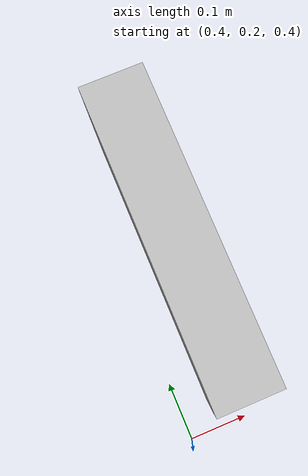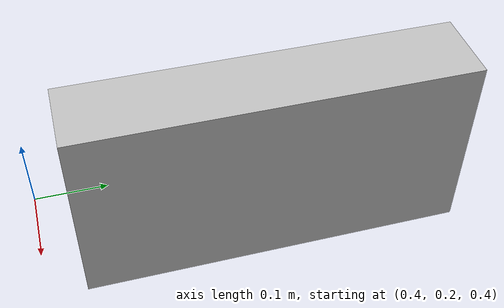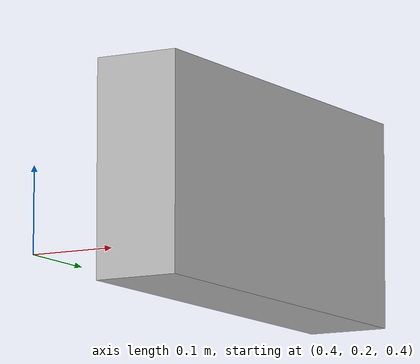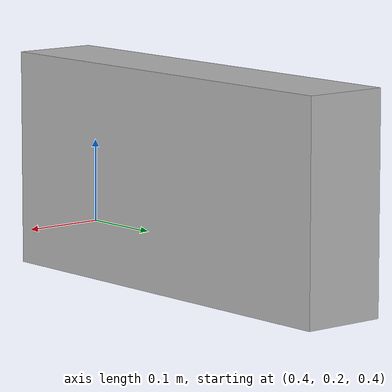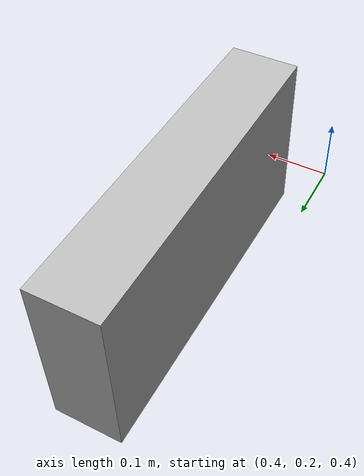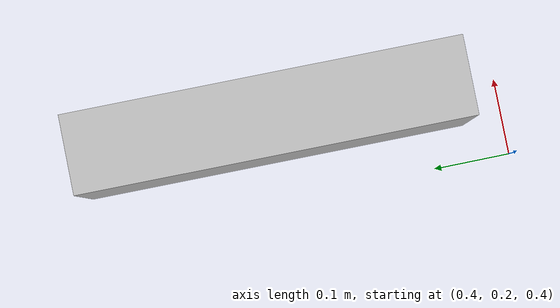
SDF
<!-- A simple camera for recording Gazebo simulations -->
<?xml version="1.0" ?>
<sdf version="1.5">
  <model name="camera">
    <link name="link">
      <pose>0.5 0.5 0.5 0 0 3.14</pose>
      <inertial>
        <mass>0.1</mass>
      </inertial>
      <collision name="collision">
 	<pose>0 0 0 0 0 -1.57</pose>
         <geometry>
          <box>
            <size>0.5 0.1 0.25</size>
          </box>
         </geometry>
      </collision>
      <visual name="visual">
 	<pose>0 0 0 0 0 -1.57</pose>
         <geometry>
          <box>
            <size>0.5 0.1 0.25</size>
          </box>
         </geometry>
      </visual>
      <sensor name="camera" type="camera">
        <camera>
          <horizontal_fov>1.047</horizontal_fov>
          <image>
            <width>1280</width>
            <height>960</height>
          </image>
          <clip>
            <near>0.3</near>
            <far>100</far>
          </clip>
          <save enabled="true">
            <path>gazebo_camera</path>
          </save>
        </camera>
        <always_on>1</always_on>
        <update_rate>30</update_rate>
        <visualize>true</visualize>
      </sensor>
    </link>
    <joint name="fixed to ground" type="revolute">
      	<parent>world</parent>
      	<child>link</child>
       	<axis>
         <limit>
          <lower>0</lower>
          <upper>0</upper>
         </limit>
         <xyz>0 0 1.25</xyz>
        </axis>
    </joint>
  </model>
</sdf>
